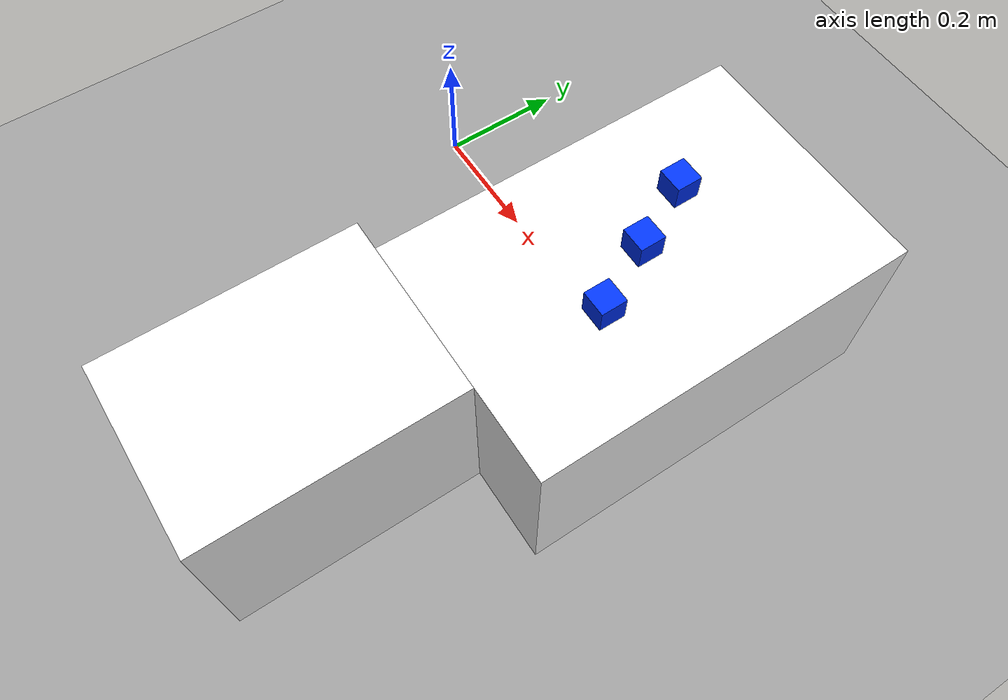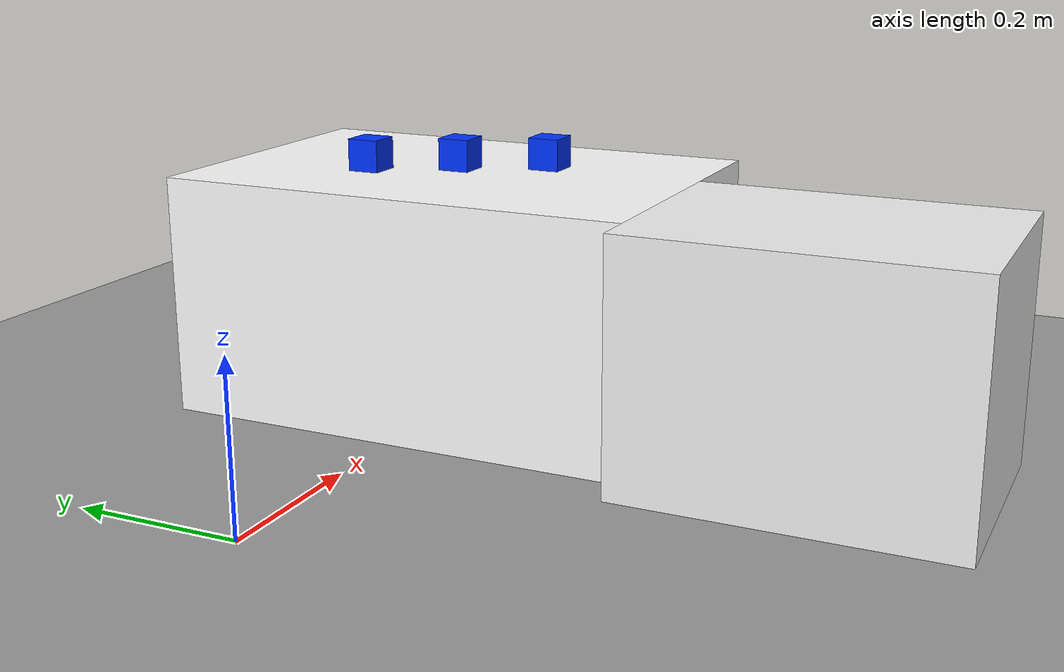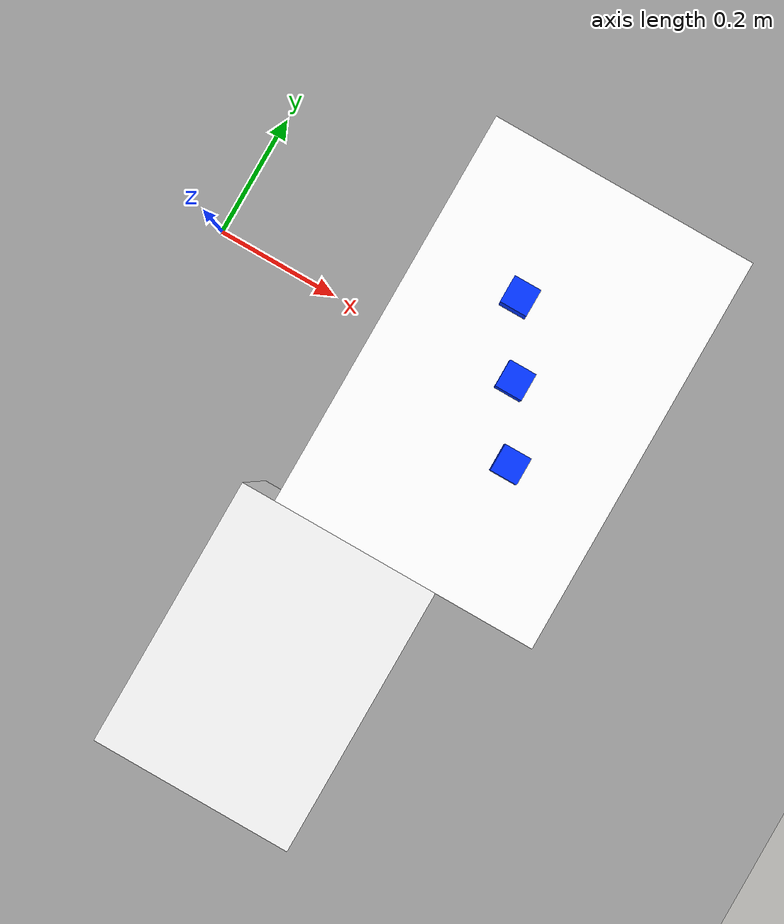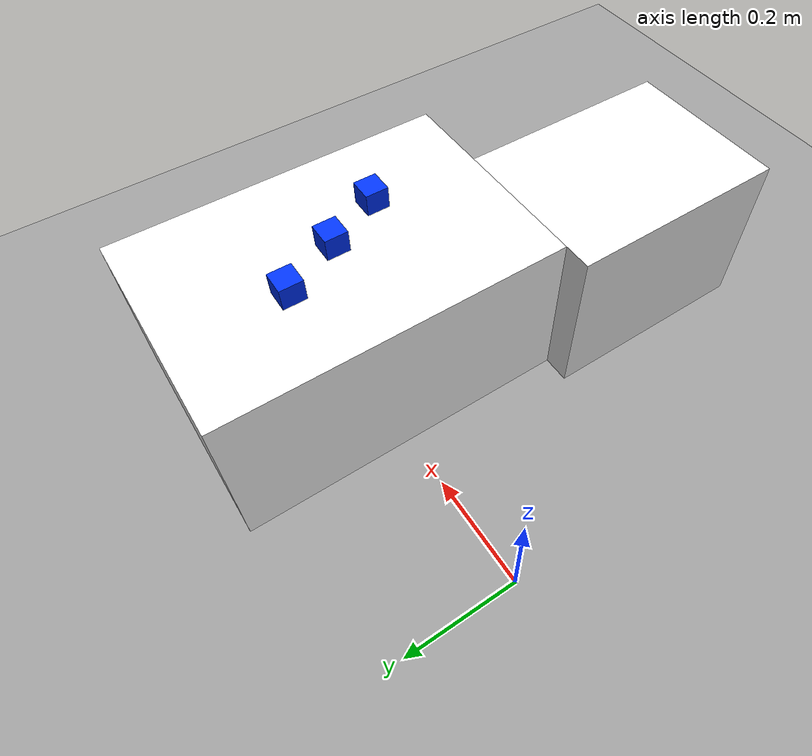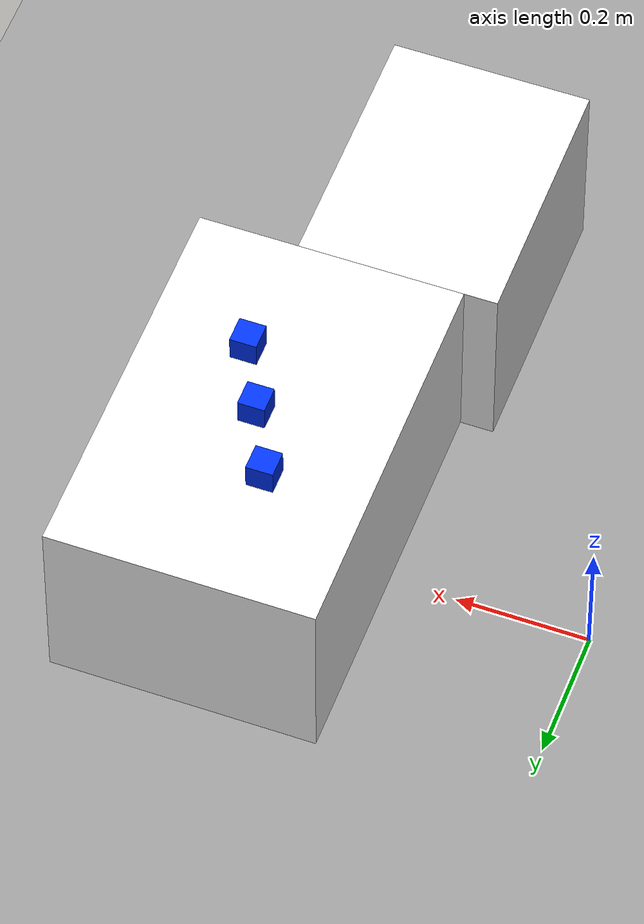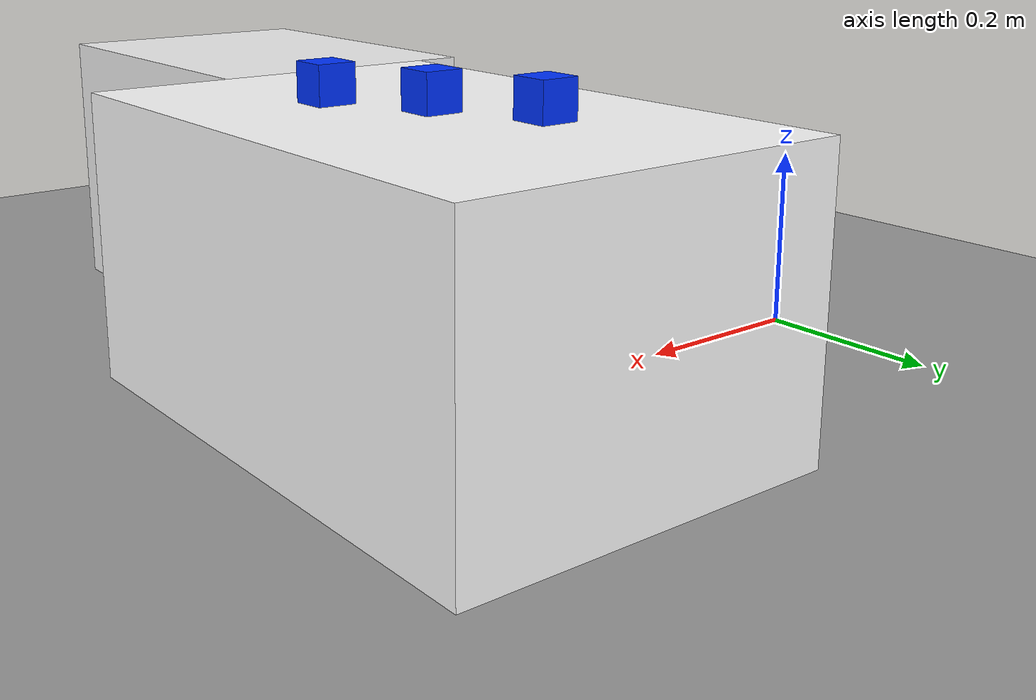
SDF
<?xml version="1.0" ?>
<!--
  Pick and Place World for ME5250 Bin Picking Project
  Vishal
-->
<sdf version='1.10'>
  <world name='pick_place_world'>
    <physics name='1ms' type='ignored'>
      <max_step_size>0.001</max_step_size>
      <real_time_factor>1</real_time_factor>
      <real_time_update_rate>1000</real_time_update_rate>
    </physics>
    <plugin name='gz::sim::systems::Physics' filename='gz-sim-physics-system'/>
    <plugin name='gz::sim::systems::UserCommands' filename='gz-sim-user-commands-system'/>
    <plugin name='gz::sim::systems::SceneBroadcaster' filename='gz-sim-scene-broadcaster-system'/>
    <plugin name='gz::sim::systems::Contact' filename='gz-sim-contact-system'/>

    <gravity>0 0 -9.8</gravity>
    <magnetic_field>5.5645e-06 2.28758e-05 -4.23884e-05</magnetic_field>
    <atmosphere type='adiabatic'/>

    <scene>
      <ambient>0.4 0.4 0.4 1</ambient>
      <background>0.7 0.7 0.7 1</background>
      <shadows>true</shadows>
    </scene>

    <!-- Ground Plane -->
    <model name='ground_plane'>
      <static>true</static>
      <link name='link'>
        <collision name='collision'>
          <geometry>
            <plane>
              <normal>0 0 1</normal>
              <size>100 100</size>
            </plane>
          </geometry>
          <surface>
            <friction>
              <ode>
                <mu>1.0</mu>
                <mu2>1.0</mu2>
              </ode>
            </friction>
          </surface>
        </collision>
        <visual name='visual'>
          <geometry>
            <plane>
              <normal>0 0 1</normal>
              <size>100 100</size>
            </plane>
          </geometry>
          <material>
            <ambient>0.5 0.5 0.5 1</ambient>
            <diffuse>0.6 0.6 0.6 1</diffuse>
          </material>
        </visual>
      </link>
    </model>

    <!-- Sun -->
    <light name='sun' type='directional'>
      <pose>0 0 10 0 0 0</pose>
      <cast_shadows>true</cast_shadows>
      <intensity>1</intensity>
      <direction>-0.5 0.1 -0.9</direction>
      <diffuse>0.8 0.8 0.8 1</diffuse>
      <specular>0.2 0.2 0.2 1</specular>
      <attenuation>
        <range>1000</range>
        <linear>0.01</linear>
        <constant>0.9</constant>
        <quadratic>0.001</quadratic>
      </attenuation>
    </light>

    <!-- Pick Table - MATCHES MoveIt: center(0.5, 0, 0.15), size(0.4, 0.6, 0.3), top at z=0.30 -->
    <model name='pick_table'>
      <static>true</static>
      <pose>0.5 0 0.15 0 0 0</pose>
      <link name='table_link'>
        <collision name='collision'>
          <geometry>
            <box>
              <size>0.4 0.6 0.3</size>
            </box>
          </geometry>
        </collision>
        <visual name='visual'>
          <geometry>
            <box>
              <size>0.4 0.6 0.3</size>
            </box>
          </geometry>
          <material>
            <ambient>0.9 0.9 0.9 1</ambient>
            <diffuse>1.0 1.0 1.0 1</diffuse>
            <specular>0.1 0.1 0.1 1</specular>
          </material>
        </visual>
      </link>
    </model>

    <!-- Place Table - MATCHES MoveIt: center(0.4, -0.5, 0.15), size(0.3, 0.4, 0.3), top at z=0.30 -->
    <model name='place_table'>
      <static>true</static>
      <pose>0.4 -0.5 0.15 0 0 0</pose>
      <link name='table_link'>
        <collision name='collision'>
          <geometry>
            <box>
              <size>0.3 0.4 0.3</size>
            </box>
          </geometry>
        </collision>
        <visual name='visual'>
          <geometry>
            <box>
              <size>0.3 0.4 0.3</size>
            </box>
          </geometry>
          <material>
            <ambient>0.85 0.85 0.85 1</ambient>
            <diffuse>0.95 0.95 0.95 1</diffuse>
            <specular>0.1 0.1 0.1 1</specular>
          </material>
        </visual>
      </link>
    </model>

    <!-- Blue Cube 1 - z=0.32 (table top 0.30 + half cube 0.02) -->
    <model name="blue_cube_1">
      <pose>0.45 0.1 0.32 0 0 0</pose>
      <link name="link">
        <inertial>
          <mass>0.1</mass>
          <inertia>
            <ixx>0.000017</ixx>
            <iyy>0.000017</iyy>
            <izz>0.000017</izz>
          </inertia>
        </inertial>
        <collision name="collision">
          <geometry>
            <box>
              <size>0.04 0.04 0.04</size>
            </box>
          </geometry>
          <surface>
            <friction>
              <ode>
                <mu>1.0</mu>
                <mu2>1.0</mu2>
              </ode>
            </friction>
          </surface>
        </collision>
        <visual name="visual">
          <geometry>
            <box>
              <size>0.04 0.04 0.04</size>
            </box>
          </geometry>
          <material>
            <ambient>0.0 0.0 0.8 1</ambient>
            <diffuse>0.0 0.2 1.0 1</diffuse>
          </material>
        </visual>
      </link>
    </model>

    <!-- Blue Cube 2 -->
    <model name="blue_cube_2">
      <pose>0.5 0 0.32 0 0 0</pose>
      <link name="link">
        <inertial>
          <mass>0.1</mass>
          <inertia>
            <ixx>0.000017</ixx>
            <iyy>0.000017</iyy>
            <izz>0.000017</izz>
          </inertia>
        </inertial>
        <collision name="collision">
          <geometry>
            <box>
              <size>0.04 0.04 0.04</size>
            </box>
          </geometry>
          <surface>
            <friction>
              <ode>
                <mu>1.0</mu>
                <mu2>1.0</mu2>
              </ode>
            </friction>
          </surface>
        </collision>
        <visual name="visual">
          <geometry>
            <box>
              <size>0.04 0.04 0.04</size>
            </box>
          </geometry>
          <material>
            <ambient>0.0 0.0 0.8 1</ambient>
            <diffuse>0.0 0.2 1.0 1</diffuse>
          </material>
        </visual>
      </link>
    </model>

    <!-- Blue Cube 3 -->
    <model name="blue_cube_3">
      <pose>0.55 -0.1 0.32 0 0 0</pose>
      <link name="link">
        <inertial>
          <mass>0.1</mass>
          <inertia>
            <ixx>0.000017</ixx>
            <iyy>0.000017</iyy>
            <izz>0.000017</izz>
          </inertia>
        </inertial>
        <collision name="collision">
          <geometry>
            <box>
              <size>0.04 0.04 0.04</size>
            </box>
          </geometry>
          <surface>
            <friction>
              <ode>
                <mu>1.0</mu>
                <mu2>1.0</mu2>
              </ode>
            </friction>
          </surface>
        </collision>
        <visual name="visual">
          <geometry>
            <box>
              <size>0.04 0.04 0.04</size>
            </box>
          </geometry>
          <material>
            <ambient>0.0 0.0 0.8 1</ambient>
            <diffuse>0.0 0.2 1.0 1</diffuse>
          </material>
        </visual>
      </link>
    </model>

  </world>
</sdf>
